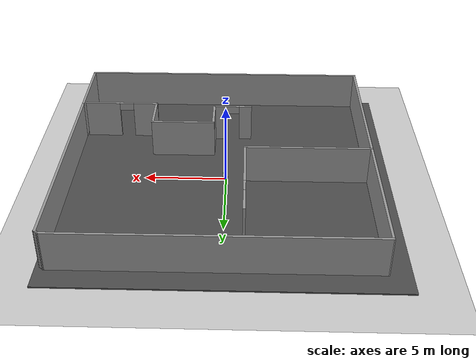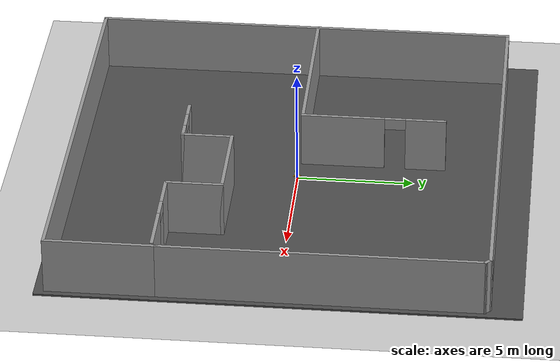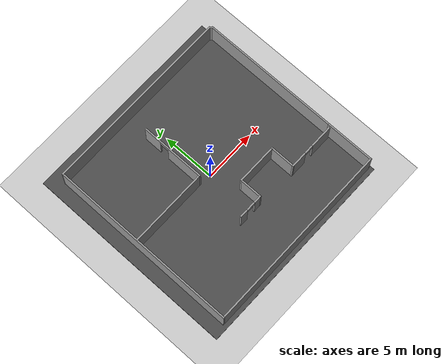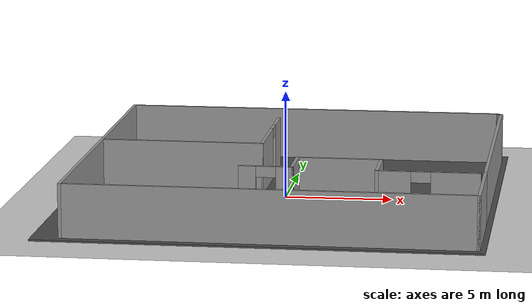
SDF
<sdf version="1.7">
 <world name="default">
  <light name="sun" type="directional">
   <pose>0 0 10 0 -0 0</pose>
   <diffuse>0.8 0.8 0.8 1</diffuse>
   <specular>0.2 0.2 0.2 1</specular>
   <attenuation>
    <range>1000</range>
    <constant>0.9</constant>
    <linear>0.01</linear>
    <quadratic>0.001</quadratic>
   </attenuation>
   <direction>-0.5 0.1 -0.9</direction>
   <spot><inner_angle>0</inner_angle><outer_angle>0</outer_angle><falloff>0</falloff></spot>
  </light>
  <model name="ground_plane">
   <static>1</static>
   <link name="link">
    <collision name="collision">
     <geometry><plane><normal>0 0 1</normal><size>100 100</size></plane></geometry>
     <surface><friction><ode><mu>100</mu><mu2>50</mu2></ode></friction></surface>
    </collision>
    <visual name="visual">
     <cast_shadows>0</cast_shadows>
     <geometry><plane><normal>0 0 1</normal><size>100 100</size></plane></geometry>
     <material>
      <script><uri>file://media/materials/scripts/gazebo.material</uri><name>Gazebo/Grey</name></script>
     </material>
    </visual>
   </link>
  </model>
  <gravity>0 0 -9.8</gravity>
  <magnetic_field>6e-06 2.3e-05 -4.2e-05</magnetic_field>
  <atmosphere type="adiabatic"/>
  <physics type="ode">
   <max_step_size>0.001</max_step_size>
   <real_time_factor>1</real_time_factor>
   <real_time_update_rate>1000</real_time_update_rate>
  </physics>
  <scene><ambient>0.4 0.4 0.4 1</ambient><background>0.7 0.7 0.7 1</background><shadows>1</shadows></scene>
  <spherical_coordinates>
   <surface_model>EARTH_WGS84</surface_model>
   <latitude_deg>0</latitude_deg>
   <longitude_deg>0</longitude_deg>
   <elevation>0</elevation>
   <heading_deg>0</heading_deg>
  </spherical_coordinates>
  <model name="asphalt_plane">
   <static>1</static>
   <link name="link">
    <collision name="collision"><geometry><box><size>20 20 0.1</size></box></geometry></collision>
    <visual name="visual">
     <cast_shadows>0</cast_shadows>
     <geometry><box><size>20 20 0.1</size></box></geometry>
     <material>
      <script>
       <uri>model://asphalt_plane/materials/scripts</uri>
       <uri>model://asphalt_plane/materials/textures</uri>
       <name>vrc/asphalt</name>
      </script>
     </material>
    </visual>
   </link>
   <pose>-0.089672 0.059574 0 0 -0 0</pose>
  </model>
  <light name="user_directional_light_0" type="directional">
   <pose>-5.63054 -11.2657 1 0 -0 0</pose>
   <diffuse>0.5 0.5 0.5 1</diffuse>
   <specular>0.1 0.1 0.1 1</specular>
   <direction>0.1 0.1 -0.9</direction>
   <attenuation>
    <range>20</range>
    <constant>0.5</constant>
    <linear>0.01</linear>
    <quadratic>0.001</quadratic>
   </attenuation>
   <spot><inner_angle>0</inner_angle><outer_angle>0</outer_angle><falloff>0</falloff></spot>
  </light>
  <light name="user_directional_light_1" type="directional">
   <pose>10.4762 9.60881 1 0 -0 0</pose>
   <diffuse>0.5 0.5 0.5 1</diffuse>
   <specular>0.1 0.1 0.1 1</specular>
   <direction>0.1 0.1 -0.9</direction>
   <attenuation>
    <range>20</range>
    <constant>0.5</constant>
    <linear>0.01</linear>
    <quadratic>0.001</quadratic>
   </attenuation>
   <spot><inner_angle>0</inner_angle><outer_angle>0</outer_angle><falloff>0</falloff></spot>
  </light>
  <audio><device>default</device></audio>
  <model name="marrtinorobot2">
   <link name="base_footprint">
    <inertial>
     <pose>0.024622 0 0.105538 0 -0 0</pose>
     <mass>1.255</mass>
     <inertia>
      <ixx>0.0165746</ixx>
      <ixy>0</ixy>
      <ixz>-0.00386688</ixz>
      <iyy>0.018371</iyy>
      <iyz>0</iyz>
      <izz>0.014814</izz>
     </inertia>
    </inertial>
    <collision name="base_footprint_fixed_joint_lump__base_link_collision">
     <pose>0 0 0.075 0 -0 0</pose>
     <geometry><box><size>0.24 0.275 0.003</size></box></geometry>
    </collision>
    <collision name="base_footprint_fixed_joint_lump__camera_link_collision_1">
     <pose>0.14 0 0.12 0 -0 0</pose>
     <geometry><box><size>0.03 0.124 0.03</size></box></geometry>
    </collision>
    <collision name="base_footprint_fixed_joint_lump__front_caster_wheel_link_collision_2">
     <pose>0.0825 0 0.0375 0 -0 0</pose>
     <geometry><sphere><radius>0.0375</radius></sphere></geometry>
     <surface><friction><ode><mu>0.01</mu><mu2>0.01</mu2></ode></friction></surface>
    </collision>
    <collision name="base_footprint_fixed_joint_lump__laser_collision_3">
     <pose>0.12 0 0.38 0 -0 0</pose>
     <geometry><cylinder><length>0.05</length><radius>0.0375</radius></cylinder></geometry>
    </collision>
    <collision name="base_footprint_fixed_joint_lump__rear_caster_wheel_link_collision_4">
     <pose>-0.0825 0 0.0375 0 -0 0</pose>
     <geometry><sphere><radius>0.0375</radius></sphere></geometry>
     <surface><friction><ode><mu>0.01</mu><mu2>0.01</mu2></ode></friction></surface>
    </collision>
    <visual name="base_footprint_fixed_joint_lump__base_link_visual">
     <pose>0 0 0.075 0 -0 0</pose>
     <geometry><box><size>0.24 0.275 0.003</size></box></geometry>
     <material>
      <ambient>0.8392 0.6314 0 1</ambient>
      <diffuse>0.8392 0.6314 0 1</diffuse>
      <specular>0.99 0.99 0.99 1</specular>
      <emissive>0 0 0 0</emissive>
     </material>
    </visual>
    <visual name="base_footprint_fixed_joint_lump__camera_link_visual_1">
     <pose>0.14 0 0.12 0 -0 0</pose>
     <geometry><box><size>0.03 0.124 0.03</size></box></geometry>
     <material>
      <ambient>0.416 0.051 0.047 1</ambient>
      <diffuse>0.416 0.051 0.047 1</diffuse>
      <specular>0.416 0.051 0.047 1</specular>
      <emissive>0.416 0.051 0.047 1</emissive>
     </material>
    </visual>
    <visual name="base_footprint_fixed_joint_lump__front_caster_wheel_link_visual_2">
     <pose>0.0825 0 0.0375 0 -0 0</pose>
     <geometry><sphere><radius>0.0375</radius></sphere></geometry>
    </visual>
    <visual name="base_footprint_fixed_joint_lump__laser_visual_3">
     <pose>0.12 0 0.38 0 -0 0</pose>
     <geometry><cylinder><length>0.05</length><radius>0.0375</radius></cylinder></geometry>
     <material>
      <ambient>0.003 0.639 0.223 1</ambient>
      <diffuse>0.003 0.639 0.223 1</diffuse>
      <specular>0.003 0.639 0.223 1</specular>
      <emissive>0 0 0 0</emissive>
     </material>
    </visual>
    <visual name="base_footprint_fixed_joint_lump__rear_caster_wheel_link_visual_4">
     <pose>-0.0825 0 0.0375 0 -0 0</pose>
     <geometry><sphere><radius>0.0375</radius></sphere></geometry>
    </visual>
    <sensor name="camera" type="depth">
     <always_on>1</always_on>
     <update_rate>30</update_rate>
     <camera name="camera">
      <horizontal_fov>1.50098</horizontal_fov>
      <image><width>640</width><height>480</height><format>R8G8B8</format></image>
      <clip><near>0.1</near><far>100</far></clip>
     </camera>
     <plugin name="camera_controller" filename="libgazebo_ros_camera.so">
      <ros>
       <remapping>/camera/camera_info:=/camera/color/camera_info</remapping>
       <remapping>/camera/image_raw:=/camera/color/image_raw</remapping>
       <remapping>/camera/points:=/camera/depth/color/points</remapping>
       <remapping>/camera/depth/image_raw:=/camera/depth/image_rect_raw</remapping>
      </ros>
      <min_depth>0.015</min_depth>
      <max_depth>3.0</max_depth>
      <hack_baseline>0.07</hack_baseline>
      <frame_name>camera_depth_link</frame_name>
      <distortion_k1>0.00000001</distortion_k1>
      <distortion_k2>0.00000001</distortion_k2>
      <distortion_k3>0.00000001</distortion_k3>
      <distortion_t1>0.00000001</distortion_t1>
      <distortion_t2>0.00000001</distortion_t2>
     </plugin>
     <pose>0.14 0 0.12 0 -0 0</pose>
    </sensor>
    <sensor name="imu_sensor" type="imu">
     <always_on>1</always_on>
     <update_rate>20</update_rate>
     <visualize>1</visualize>
     <topic>__default_topic__</topic>
     <plugin name="imu_plugin" filename="libgazebo_ros_imu_sensor.so">
      <ros><remapping>~/out:=imu/data</remapping></ros>
      <topicName>imu/data</topicName>
      <bodyName>imu_link</bodyName>
      <updateRateHZ>10.0</updateRateHZ>
      <gaussianNoise>0.0</gaussianNoise>
      <xyzOffset>0 0 0</xyzOffset>
      <rpyOffset>0 0 0</rpyOffset>
      <frameName>imu_link</frameName>
      <initialOrientationAsReference>0</initialOrientationAsReference>
     </plugin>
     <pose>0 0 0.075 0 -0 0</pose>
    </sensor>
    <sensor name="laser_head_hokuyo_sensor" type="ray">
     <always_on>1</always_on>
     <update_rate>10</update_rate>
     <visualize>0</visualize>
     <ray>
      <scan>
       <horizontal>
        <samples>360</samples>
        <resolution>1</resolution>
        <min_angle>-3.1416</min_angle>
        <max_angle>3.1416</max_angle>
       </horizontal>
       <vertical><samples>1</samples><min_angle>0</min_angle><max_angle>0</max_angle></vertical>
      </scan>
      <range><min>0.08</min><max>12</max><resolution>0.01</resolution></range>
     </ray>
     <plugin name="laser_gazebo_ros_head_hokuyo_controller" filename="libgazebo_ros_ray_sensor.so">
      <ros><remapping>~/out:=scan</remapping></ros>
      <output_type>sensor_msgs/LaserScan</output_type>
      <alwaysOn>1</alwaysOn>
      <updateRate>10</updateRate>
      <topicName>scan</topicName>
      <frame_name>laser</frame_name>
      <output_type>sensor_msgs/LaserScan</output_type>
     </plugin>
     <pose>0.12 0 0.405 0 -0 0</pose>
    </sensor>
   </link>
   <joint name="left_wheel_joint" type="revolute">
    <pose relative_to="base_footprint">0 0.13 0.045 0 -0 0</pose>
    <parent>base_footprint</parent>
    <child>left_wheel_link</child>
    <axis>
     <xyz>0 1 0</xyz>
     <limit><lower>-1e+16</lower><upper>1e+16</upper></limit>
     <dynamics><spring_reference>0</spring_reference><spring_stiffness>0</spring_stiffness></dynamics>
    </axis>
   </joint>
   <link name="left_wheel_link">
    <pose relative_to="left_wheel_joint">0 0 0 0 -0 0</pose>
    <inertial>
     <mass>0.1</mass>
     <inertia><ixx>8.1e-05</ixx><ixy>0</ixy><ixz>0</ixz><iyy>8.1e-05</iyy><iyz>0</iyz><izz>8.1e-05</izz></inertia>
    </inertial>
    <collision name="left_wheel_link_collision">
     <pose>0 0 0 1.5708 -0 0</pose>
     <geometry><cylinder><length>0.01</length><radius>0.045</radius></cylinder></geometry>
    </collision>
    <visual name="left_wheel_link_visual">
     <pose>0 0 0 1.5708 -0 0</pose>
     <geometry><cylinder><length>0.01</length><radius>0.045</radius></cylinder></geometry>
     <material>
      <ambient>0.1764 0.4588 0.8509 1</ambient>
      <diffuse>0.1764 0.4588 0.8509 1</diffuse>
      <specular>0.1764 0.4588 0.8509 1</specular>
      <emissive>0 0 0 0</emissive>
     </material>
    </visual>
   </link>
   <joint name="right_wheel_joint" type="revolute">
    <pose relative_to="base_footprint">0 -0.13 0.045 0 -0 0</pose>
    <parent>base_footprint</parent>
    <child>right_wheel_link</child>
    <axis>
     <xyz>0 1 0</xyz>
     <limit><lower>-1e+16</lower><upper>1e+16</upper></limit>
     <dynamics><spring_reference>0</spring_reference><spring_stiffness>0</spring_stiffness></dynamics>
    </axis>
   </joint>
   <link name="right_wheel_link">
    <pose relative_to="right_wheel_joint">0 0 0 0 -0 0</pose>
    <inertial>
     <mass>0.1</mass>
     <inertia><ixx>8.1e-05</ixx><ixy>0</ixy><ixz>0</ixz><iyy>8.1e-05</iyy><iyz>0</iyz><izz>8.1e-05</izz></inertia>
    </inertial>
    <collision name="right_wheel_link_collision">
     <pose>0 0 0 1.5708 -0 0</pose>
     <geometry><cylinder><length>0.01</length><radius>0.045</radius></cylinder></geometry>
    </collision>
    <visual name="right_wheel_link_visual">
     <pose>0 0 0 1.5708 -0 0</pose>
     <geometry><cylinder><length>0.01</length><radius>0.045</radius></cylinder></geometry>
     <material>
      <ambient>0.1764 0.4588 0.8509 1</ambient>
      <diffuse>0.1764 0.4588 0.8509 1</diffuse>
      <specular>0.1764 0.4588 0.8509 1</specular>
      <emissive>0 0 0 0</emissive>
     </material>
    </visual>
   </link>
   <static>0</static>
   <plugin name="differential_drive_controller" filename="libgazebo_ros_diff_drive.so">
    <ros><argument>odom:=odom/unfiltered</argument></ros>
    <updateRate>100</updateRate>
    <left_joint>left_wheel_joint</left_joint>
    <right_joint>right_wheel_joint</right_joint>
    <wheel_separation>0.26</wheel_separation>
    <wheel_diameter>0.09</wheel_diameter>
    <max_wheel_acceleration>1.0</max_wheel_acceleration>
    <robot_base_frame>base_footprint</robot_base_frame>
    <publish_odom>1</publish_odom>
    <publish_odom_tf>0</publish_odom_tf>
    <publish_wheel_tf>1</publish_wheel_tf>
    <odometry_frame>odom</odometry_frame>
   </plugin>
   <pose>0.029868 -0.003407 0.049998 -1.1e-05 -1.9e-05 -0.446373</pose>
  </model>
  <model name="Untitled">
   <pose>0.430457 -0.379185 0 0 -0 0</pose>
   <link name="Wall_10">
    <pose>6.60954 -4.68081 0 0 -0 3.14159</pose>
    <visual name="Wall_10_Visual_0">
     <pose>-1.2525 0 1.25 0 -0 0</pose>
     <geometry><box><size>2.245 0.15 2.5</size></box></geometry>
     <material>
      <script><uri>file://media/materials/scripts/gazebo.material</uri><name>Gazebo/Grey</name></script>
      <ambient>1 1 1 1</ambient>
     </material>
     <meta><layer>0</layer></meta>
    </visual>
    <collision name="Wall_10_Collision_0">
     <geometry><box><size>2.245 0.15 2.5</size></box></geometry>
     <pose>-1.2525 0 1.25 0 -0 0</pose>
    </collision>
    <visual name="Wall_10_Visual_1">
     <pose>1.5725 0 1.25 0 -0 0</pose>
     <geometry><box><size>1.605 0.15 2.5</size></box></geometry>
     <material>
      <script><uri>file://media/materials/scripts/gazebo.material</uri><name>Gazebo/Grey</name></script>
      <ambient>1 1 1 1</ambient>
     </material>
     <meta><layer>0</layer></meta>
    </visual>
    <collision name="Wall_10_Collision_1">
     <geometry><box><size>1.605 0.15 2.5</size></box></geometry>
     <pose>1.5725 0 1.25 0 -0 0</pose>
    </collision>
    <visual name="Wall_10_Visual_2">
     <pose>0.32 0 2.25 0 -0 0</pose>
     <geometry><box><size>0.9 0.15 0.5</size></box></geometry>
     <material>
      <script><uri>file://media/materials/scripts/gazebo.material</uri><name>Gazebo/Grey</name></script>
      <ambient>1 1 1 1</ambient>
     </material>
     <meta><layer>0</layer></meta>
    </visual>
    <collision name="Wall_10_Collision_2">
     <geometry><box><size>0.9 0.15 0.5</size></box></geometry>
     <pose>0.32 0 2.25 0 -0 0</pose>
    </collision>
   </link>
   <link name="Wall_11">
    <collision name="Wall_11_Collision">
     <geometry><box><size>2.5 0.15 2.5</size></box></geometry>
     <pose>0 0 1.25 0 -0 0</pose>
    </collision>
    <visual name="Wall_11_Visual">
     <pose>0 0 1.25 0 -0 0</pose>
     <geometry><box><size>2.5 0.15 2.5</size></box></geometry>
     <material>
      <script><uri>file://media/materials/scripts/gazebo.material</uri><name>Gazebo/Grey</name></script>
      <ambient>1 1 1 1</ambient>
     </material>
     <meta><layer>0</layer></meta>
    </visual>
    <pose>4.30954 -3.50582 0 0 -0 1.5708</pose>
   </link>
   <link name="Wall_12">
    <collision name="Wall_12_Collision">
     <geometry><box><size>4 0.15 2.5</size></box></geometry>
     <pose>0 0 1.25 0 -0 0</pose>
    </collision>
    <visual name="Wall_12_Visual">
     <pose>0 0 1.25 0 -0 0</pose>
     <geometry><box><size>4 0.15 2.5</size></box></geometry>
     <material>
      <script><uri>file://media/materials/scripts/gazebo.material</uri><name>Gazebo/Grey</name></script>
      <ambient>1 1 1 1</ambient>
     </material>
     <meta><layer>0</layer></meta>
    </visual>
    <pose>2.38454 -2.33081 0 0 -0 3.14159</pose>
   </link>
   <link name="Wall_13">
    <collision name="Wall_13_Collision">
     <geometry><box><size>2.25 0.15 2.5</size></box></geometry>
     <pose>0 0 1.25 0 -0 0</pose>
    </collision>
    <visual name="Wall_13_Visual">
     <pose>0 0 1.25 0 -0 0</pose>
     <geometry><box><size>2.25 0.15 2.5</size></box></geometry>
     <material>
      <script><uri>file://media/materials/scripts/gazebo.material</uri><name>Gazebo/Grey</name></script>
      <ambient>1 1 1 1</ambient>
     </material>
     <meta><layer>0</layer></meta>
    </visual>
    <pose>0.459543 -3.38082 0 0 -0 -1.5708</pose>
   </link>
   <link name="Wall_14">
    <pose>-0.715457 -4.43081 0 0 -0 3.14159</pose>
    <visual name="Wall_14_Visual_0">
     <pose>-0.8475 0 1.25 0 -0 0</pose>
     <geometry><box><size>0.805 0.15 2.5</size></box></geometry>
     <material>
      <script><uri>file://media/materials/scripts/gazebo.material</uri><name>Gazebo/Grey</name></script>
      <ambient>1 1 1 1</ambient>
     </material>
     <meta><layer>0</layer></meta>
    </visual>
    <collision name="Wall_14_Collision_0">
     <geometry><box><size>0.805 0.15 2.5</size></box></geometry>
     <pose>-0.8475 0 1.25 0 -0 0</pose>
    </collision>
    <visual name="Wall_14_Visual_1">
     <pose>0.8525 0 1.25 0 -0 0</pose>
     <geometry><box><size>0.795 0.15 2.5</size></box></geometry>
     <material>
      <script><uri>file://media/materials/scripts/gazebo.material</uri><name>Gazebo/Grey</name></script>
      <ambient>1 1 1 1</ambient>
     </material>
     <meta><layer>0</layer></meta>
    </visual>
    <collision name="Wall_14_Collision_1">
     <geometry><box><size>0.795 0.15 2.5</size></box></geometry>
     <pose>0.8525 0 1.25 0 -0 0</pose>
    </collision>
    <visual name="Wall_14_Visual_2">
     <pose>0.005 0 2.25 0 -0 0</pose>
     <geometry><box><size>0.9 0.15 0.5</size></box></geometry>
     <material>
      <script><uri>file://media/materials/scripts/gazebo.material</uri><name>Gazebo/Grey</name></script>
      <ambient>1 1 1 1</ambient>
     </material>
     <meta><layer>0</layer></meta>
    </visual>
    <collision name="Wall_14_Collision_2">
     <geometry><box><size>0.9 0.15 0.5</size></box></geometry>
     <pose>0.005 0 2.25 0 -0 0</pose>
    </collision>
   </link>
   <link name="Wall_17">
    <collision name="Wall_17_Collision">
     <geometry><box><size>18.3112 0.15 2.5</size></box></geometry>
     <pose>0 0 1.25 0 -0 0</pose>
    </collision>
    <visual name="Wall_17_Visual">
     <pose>0 0 1.25 0 -0 0</pose>
     <geometry><box><size>18.3112 0.15 2.5</size></box></geometry>
     <material>
      <script><uri>file://media/materials/scripts/gazebo.material</uri><name>Gazebo/Grey</name></script>
      <ambient>1 1 1 1</ambient>
     </material>
     <meta><layer>0</layer></meta>
    </visual>
    <pose>-0.109867 9.03448 0 0 -0 -3.13991</pose>
   </link>
   <link name="Wall_18">
    <collision name="Wall_18_Collision">
     <geometry><box><size>18.25 0.15 2.5</size></box></geometry>
     <pose>0 0 1.25 0 -0 0</pose>
    </collision>
    <visual name="Wall_18_Visual">
     <pose>0 0 1.25 0 -0 0</pose>
     <geometry><box><size>18.25 0.15 2.5</size></box></geometry>
     <material>
      <script><uri>file://media/materials/scripts/gazebo.material</uri><name>Gazebo/Grey</name></script>
      <ambient>1 1 1 1</ambient>
     </material>
     <meta><layer>0</layer></meta>
    </visual>
    <pose>-9.19046 -0.030815 0 0 -0 -1.5708</pose>
   </link>
   <link name="Wall_19">
    <collision name="Wall_19_Collision">
     <geometry><box><size>18.5 0.15 2.5</size></box></geometry>
     <pose>0 0 1.25 0 -0 0</pose>
    </collision>
    <visual name="Wall_19_Visual">
     <pose>0 0 1.25 0 -0 0</pose>
     <geometry><box><size>18.5 0.15 2.5</size></box></geometry>
     <material>
      <script><uri>file://media/materials/scripts/gazebo.material</uri><name>Gazebo/Grey</name></script>
      <ambient>1 1 1 1</ambient>
     </material>
     <meta><layer>0</layer></meta>
    </visual>
    <pose>-0.015457 -9.08081 0 0 -0 0</pose>
   </link>
   <link name="Wall_20">
    <collision name="Wall_20_Collision">
     <geometry><box><size>4.75 0.15 2.5</size></box></geometry>
     <pose>0 0 1.25 0 -0 0</pose>
    </collision>
    <visual name="Wall_20_Visual">
     <pose>0 0 1.25 0 -0 0</pose>
     <geometry><box><size>4.75 0.15 2.5</size></box></geometry>
     <material>
      <script><uri>file://media/materials/scripts/gazebo.material</uri><name>Gazebo/Grey</name></script>
      <ambient>1 1 1 1</ambient>
     </material>
     <meta><layer>0</layer></meta>
    </visual>
    <pose>9.15954 -6.78081 0 0 -0 1.5708</pose>
   </link>
   <link name="Wall_21">
    <collision name="Wall_21_Collision">
     <geometry><box><size>13.5 0.15 2.5</size></box></geometry>
     <pose>0 0 1.25 0 -0 0</pose>
    </collision>
    <visual name="Wall_21_Visual">
     <pose>0 0 1.25 0 -0 0</pose>
     <geometry><box><size>13.5 0.15 2.5</size></box></geometry>
     <material>
      <script><uri>file://media/materials/scripts/gazebo.material</uri><name>Gazebo/Grey</name></script>
      <ambient>1 1 1 1</ambient>
     </material>
     <meta><layer>0</layer></meta>
    </visual>
    <pose>9.15954 2.19419 0 0 -0 1.5708</pose>
   </link>
   <link name="Wall_22">
    <collision name="Wall_22_Collision">
     <geometry><box><size>0.411277 0.15 2.5</size></box></geometry>
     <pose>0 0 1.25 0 -0 0</pose>
    </collision>
    <visual name="Wall_22_Visual">
     <pose>0 0 1.25 0 -0 0</pose>
     <geometry><box><size>0.411277 0.15 2.5</size></box></geometry>
     <material>
      <script><uri>file://media/materials/scripts/gazebo.material</uri><name>Gazebo/Grey</name></script>
      <ambient>1 1 1 1</ambient>
     </material>
     <meta><layer>0</layer></meta>
    </visual>
    <pose>9.06513 8.95948 0 0 -0 2.37847</pose>
   </link>
   <link name="Wall_25">
    <collision name="Wall_25_Collision">
     <geometry><box><size>7.75 0.15 2.5</size></box></geometry>
     <pose>0 0 1.25 0 -0 0</pose>
    </collision>
    <visual name="Wall_25_Visual">
     <pose>0 0 1.25 0 -0 0</pose>
     <geometry><box><size>7.75 0.15 2.5</size></box></geometry>
     <material>
      <script><uri>file://media/materials/scripts/gazebo.material</uri><name>Gazebo/Grey</name></script>
      <ambient>1 1 1 1</ambient>
     </material>
     <meta><layer>0</layer></meta>
    </visual>
    <pose>-5.38987 0.520967 0 0 -0 0</pose>
   </link>
   <link name="Wall_26">
    <pose>-1.58987 3.57097 0 0 -0 1.5708</pose>
    <visual name="Wall_26_Visual_0">
     <pose>-1.32414 0 1.25 0 -0 0</pose>
     <geometry><box><size>3.60173 0.15 2.5</size></box></geometry>
     <material>
      <script><uri>file://media/materials/scripts/gazebo.material</uri><name>Gazebo/Grey</name></script>
      <ambient>1 1 1 1</ambient>
     </material>
     <meta><layer>0</layer></meta>
    </visual>
    <collision name="Wall_26_Collision_0">
     <geometry><box><size>3.60173 0.15 2.5</size></box></geometry>
     <pose>-1.32414 0 1.25 0 -0 0</pose>
    </collision>
    <visual name="Wall_26_Visual_1">
     <pose>2.25087 0 1.25 0 -0 0</pose>
     <geometry><box><size>1.74827 0.15 2.5</size></box></geometry>
     <material>
      <script><uri>file://media/materials/scripts/gazebo.material</uri><name>Gazebo/Grey</name></script>
      <ambient>1 1 1 1</ambient>
     </material>
     <meta><layer>0</layer></meta>
    </visual>
    <collision name="Wall_26_Collision_1">
     <geometry><box><size>1.74827 0.15 2.5</size></box></geometry>
     <pose>2.25087 0 1.25 0 -0 0</pose>
    </collision>
    <visual name="Wall_26_Visual_2">
     <pose>0.926729 0 2.25 0 -0 0</pose>
     <geometry><box><size>0.9 0.15 0.5</size></box></geometry>
     <material>
      <script><uri>file://media/materials/scripts/gazebo.material</uri><name>Gazebo/Grey</name></script>
      <ambient>1 1 1 1</ambient>
     </material>
     <meta><layer>0</layer></meta>
    </visual>
    <collision name="Wall_26_Collision_2">
     <geometry><box><size>0.9 0.15 0.5</size></box></geometry>
     <pose>0.926729 0 2.25 0 -0 0</pose>
    </collision>
   </link>
   <static>1</static>
  </model>
 </world>
</sdf>
